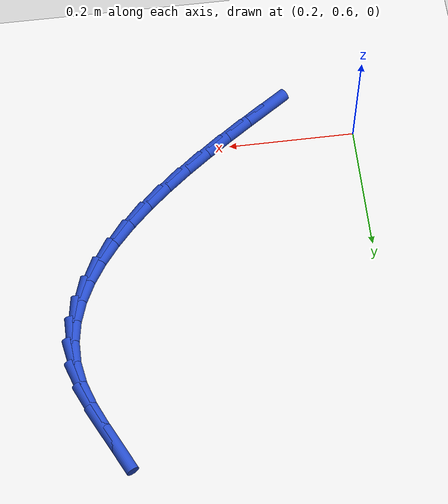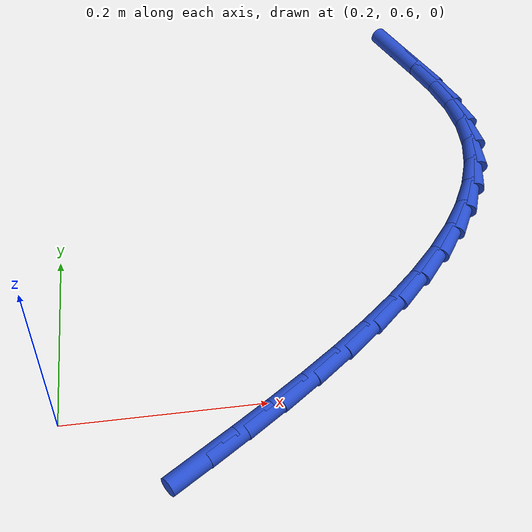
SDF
<sdf version="1.6">
 <world name="default">
  <model name="ground_plane">
   <static>1</static>
   <link name="link">
    <collision name="collision">
     <geometry><plane><normal>0 0 1</normal><size>100 100</size></plane></geometry>
     <surface><friction><ode><mu>100</mu><mu2>50</mu2></ode></friction></surface>
    </collision>
    <visual name="visual">
     <cast_shadows>0</cast_shadows>
     <geometry><plane><normal>0 0 1</normal><size>100 100</size></plane></geometry>
     <material>
      <script><uri>file://media/materials/scripts/gazebo.material</uri><name>Gazebo/WhiteGlow</name></script>
     </material>
    </visual>
   </link>
  </model>
  <model name="line">
   <link name="link_18">
    <pose>0.33301378354018724 0.5402707381035818 0.01 0 1.57 0.5905592637265834</pose>
    <collision name="collision">
     <geometry><cylinder><radius>0.01</radius><length>0.08</length></cylinder></geometry>
    </collision>
    <visual name="visual">
     <material>
      <script><name>Gazebo/Blue</name><uri>file://media/materials/scripts/gazebo.material</uri></script>
     </material>
     <geometry><cylinder><radius>0.01</radius><length>0.08</length></cylinder></geometry>
    </visual>
   </link>
   <link name="link_19">
    <pose>0.3692760568378916 0.5645797307935382 0.01 0 1.57 0.602876033827019</pose>
    <collision name="collision">
     <geometry><cylinder><radius>0.01</radius><length>0.08</length></cylinder></geometry>
    </collision>
    <visual name="visual">
     <material>
      <script><name>Gazebo/Blue</name><uri>file://media/materials/scripts/gazebo.material</uri></script>
     </material>
     <geometry><cylinder><radius>0.01</radius><length>0.08</length></cylinder></geometry>
    </visual>
   </link>
   <link name="link_20">
    <pose>0.4056795610236409 0.5896387121605603 0.01 0 1.57 0.6213430544188908</pose>
    <collision name="collision">
     <geometry><cylinder><radius>0.01</radius><length>0.08</length></cylinder></geometry>
    </collision>
    <visual name="visual">
     <material>
      <script><name>Gazebo/Blue</name><uri>file://media/materials/scripts/gazebo.material</uri></script>
     </material>
     <geometry><cylinder><radius>0.01</radius><length>0.08</length></cylinder></geometry>
    </visual>
   </link>
   <link name="link_21">
    <pose>0.44173726929301044 0.6154538143633236 0.01 0 1.57 0.6463781326160475</pose>
    <collision name="collision">
     <geometry><cylinder><radius>0.01</radius><length>0.08</length></cylinder></geometry>
    </collision>
    <visual name="visual">
     <material>
      <script><name>Gazebo/Blue</name><uri>file://media/materials/scripts/gazebo.material</uri></script>
     </material>
     <geometry><cylinder><radius>0.01</radius><length>0.08</length></cylinder></geometry>
    </visual>
   </link>
   <link name="link_22">
    <pose>0.47696215484157556 0.6420311695605039 0.01 0 1.57 0.6787155548486374</pose>
    <collision name="collision">
     <geometry><cylinder><radius>0.01</radius><length>0.08</length></cylinder></geometry>
    </collision>
    <visual name="visual">
     <material>
      <script><name>Gazebo/Blue</name><uri>file://media/materials/scripts/gazebo.material</uri></script>
     </material>
     <geometry><cylinder><radius>0.01</radius><length>0.08</length></cylinder></geometry>
    </visual>
   </link>
   <link name="link_23">
    <pose>0.5108671908649117 0.6693769099107765 0.01 0 1.57 0.7194360996943119</pose>
    <collision name="collision">
     <geometry><cylinder><radius>0.01</radius><length>0.08</length></cylinder></geometry>
    </collision>
    <visual name="visual">
     <material>
      <script><name>Gazebo/Blue</name><uri>file://media/materials/scripts/gazebo.material</uri></script>
     </material>
     <geometry><cylinder><radius>0.01</radius><length>0.08</length></cylinder></geometry>
    </visual>
   </link>
   <link name="link_24">
    <pose>0.5429653505585941 0.6974971675728168 0.01 0 1.57 0.770011473713023</pose>
    <collision name="collision">
     <geometry><cylinder><radius>0.01</radius><length>0.08</length></cylinder></geometry>
    </collision>
    <visual name="visual">
     <material>
      <script><name>Gazebo/Blue</name><uri>file://media/materials/scripts/gazebo.material</uri></script>
     </material>
     <geometry><cylinder><radius>0.01</radius><length>0.08</length></cylinder></geometry>
    </visual>
   </link>
   <link name="link_25">
    <pose>0.5727696071181978 0.7263980747053 0.01 0 1.57 0.8323450291786604</pose>
    <collision name="collision">
     <geometry><cylinder><radius>0.01</radius><length>0.08</length></cylinder></geometry>
    </collision>
    <visual name="visual">
     <material>
      <script><name>Gazebo/Blue</name><uri>file://media/materials/scripts/gazebo.material</uri></script>
     </material>
     <geometry><cylinder><radius>0.01</radius><length>0.08</length></cylinder></geometry>
    </visual>
   </link>
   <link name="link_26">
    <pose>0.5997929337392987 0.7560857634669025 0.01 0 1.57 0.908767914872844</pose>
    <collision name="collision">
     <geometry><cylinder><radius>0.01</radius><length>0.08</length></cylinder></geometry>
    </collision>
    <visual name="visual">
     <material>
      <script><name>Gazebo/Blue</name><uri>file://media/materials/scripts/gazebo.material</uri></script>
     </material>
     <geometry><cylinder><radius>0.01</radius><length>0.08</length></cylinder></geometry>
    </visual>
   </link>
   <link name="link_27">
    <pose>0.6235483036174716 0.7865663660162989 0.01 0 1.57 1.0019048405353337</pose>
    <collision name="collision">
     <geometry><cylinder><radius>0.01</radius><length>0.08</length></cylinder></geometry>
    </collision>
    <visual name="visual">
     <material>
      <script><name>Gazebo/Blue</name><uri>file://media/materials/scripts/gazebo.material</uri></script>
     </material>
     <geometry><cylinder><radius>0.01</radius><length>0.08</length></cylinder></geometry>
    </visual>
   </link>
   <link name="link_28">
    <pose>0.6435486899482923 0.8178460145121653 0.01 0 1.57 1.1142559251627124</pose>
    <collision name="collision">
     <geometry><cylinder><radius>0.01</radius><length>0.08</length></cylinder></geometry>
    </collision>
    <visual name="visual">
     <material>
      <script><name>Gazebo/Blue</name><uri>file://media/materials/scripts/gazebo.material</uri></script>
     </material>
     <geometry><cylinder><radius>0.01</radius><length>0.08</length></cylinder></geometry>
    </visual>
   </link>
   <link name="link_29">
    <pose>0.6593070659273356 0.8499308411131764 0.01 0 1.57 1.2472969267548355</pose>
    <collision name="collision">
     <geometry><cylinder><radius>0.01</radius><length>0.08</length></cylinder></geometry>
    </collision>
    <visual name="visual">
     <material>
      <script><name>Gazebo/Blue</name><uri>file://media/materials/scripts/gazebo.material</uri></script>
     </material>
     <geometry><cylinder><radius>0.01</radius><length>0.08</length></cylinder></geometry>
    </visual>
   </link>
   <link name="link_30">
    <pose>0.6703364047501773 0.8828269779780086 0.01 0 1.57 1.4000441554039906</pose>
    <collision name="collision">
     <geometry><cylinder><radius>0.01</radius><length>0.08</length></cylinder></geometry>
    </collision>
    <visual name="visual">
     <material>
      <script><name>Gazebo/Blue</name><uri>file://media/materials/scripts/gazebo.material</uri></script>
     </material>
     <geometry><cylinder><radius>0.01</radius><length>0.08</length></cylinder></geometry>
    </visual>
   </link>
   <link name="link_31">
    <pose>0.6761496796123925 0.9165405572653367 0.01 0 1.57 1.5676060313882123</pose>
    <collision name="collision">
     <geometry><cylinder><radius>0.01</radius><length>0.08</length></cylinder></geometry>
    </collision>
    <visual name="visual">
     <material>
      <script><name>Gazebo/Blue</name><uri>file://media/materials/scripts/gazebo.material</uri></script>
     </material>
     <geometry><cylinder><radius>0.01</radius><length>0.08</length></cylinder></geometry>
    </visual>
   </link>
   <link name="link_32">
    <pose>0.6762598637095567 0.9510777111338368 0.01 0 1.57 -1.4005545198780656</pose>
    <collision name="collision">
     <geometry><cylinder><radius>0.01</radius><length>0.08</length></cylinder></geometry>
    </collision>
    <visual name="visual">
     <material>
      <script><name>Gazebo/Blue</name><uri>file://media/materials/scripts/gazebo.material</uri></script>
     </material>
     <geometry><cylinder><radius>0.01</radius><length>0.08</length></cylinder></geometry>
    </visual>
   </link>
   <link name="link_33">
    <pose>0.6701801022839958 0.9864445380836312 0.01 0 1.57 -1.2456048604465702</pose>
    <collision name="collision">
     <geometry><cylinder><radius>0.01</radius><length>0.08</length></cylinder></geometry>
    </collision>
    <visual name="visual">
     <material>
      <script><name>Gazebo/Blue</name><uri>file://media/materials/scripts/gazebo.material</uri></script>
     </material>
     <geometry><cylinder><radius>0.01</radius><length>0.08</length></cylinder></geometry>
    </visual>
   </link>
   <link name="link_34">
    <pose>0.6580128716791604 1.0225318421855312 0.01 0 1.57 -1.1502628188703683</pose>
    <collision name="collision">
     <geometry><cylinder><radius>0.01</radius><length>0.08</length></cylinder></geometry>
    </collision>
    <visual name="visual">
     <material>
      <script><name>Gazebo/Blue</name><uri>file://media/materials/scripts/gazebo.material</uri></script>
     </material>
     <geometry><cylinder><radius>0.01</radius><length>0.08</length></cylinder></geometry>
    </visual>
   </link>
   <link name="link_35">
    <pose>0.6417676468936827 1.0588573497596132 0.01 0 1.57 -1.1088017217124908</pose>
    <collision name="collision">
     <geometry><cylinder><radius>0.01</radius><length>0.08</length></cylinder></geometry>
    </collision>
    <visual name="visual">
     <material>
      <script><name>Gazebo/Blue</name><uri>file://media/materials/scripts/gazebo.material</uri></script>
     </material>
     <geometry><cylinder><radius>0.01</radius><length>0.08</length></cylinder></geometry>
    </visual>
   </link>
   <link name="link_36">
    <pose>0.623838926941341 1.0948634625350504 0.01 0 1.57 -1.1150785877863905</pose>
    <collision name="collision">
     <geometry><cylinder><radius>0.01</radius><length>0.08</length></cylinder></geometry>
    </collision>
    <visual name="visual">
     <material>
      <script><name>Gazebo/Blue</name><uri>file://media/materials/scripts/gazebo.material</uri></script>
     </material>
     <geometry><cylinder><radius>0.01</radius><length>0.08</length></cylinder></geometry>
    </visual>
   </link>
  </model>
 </world>
</sdf>
